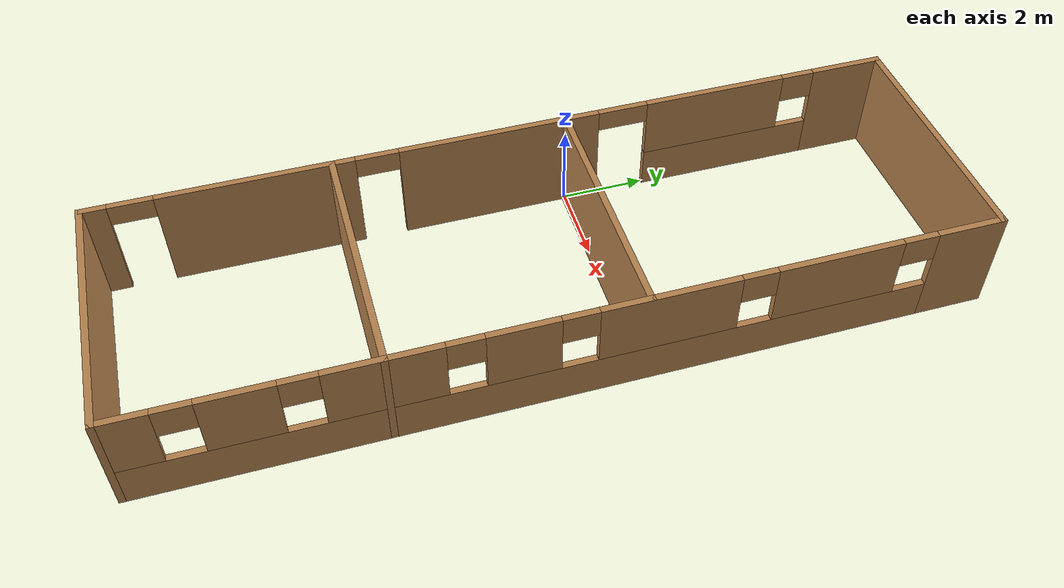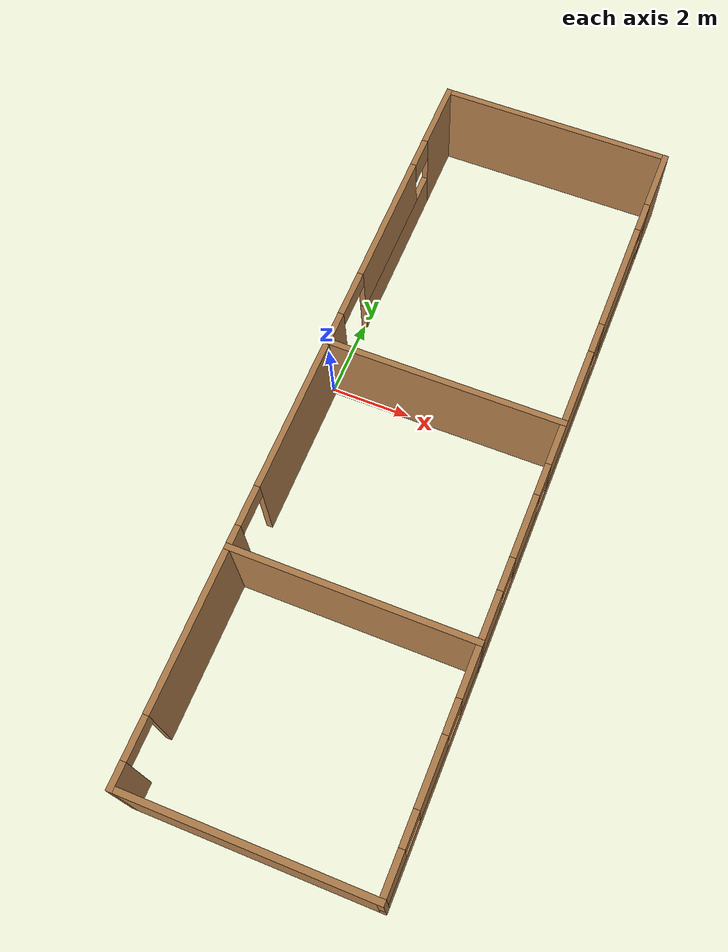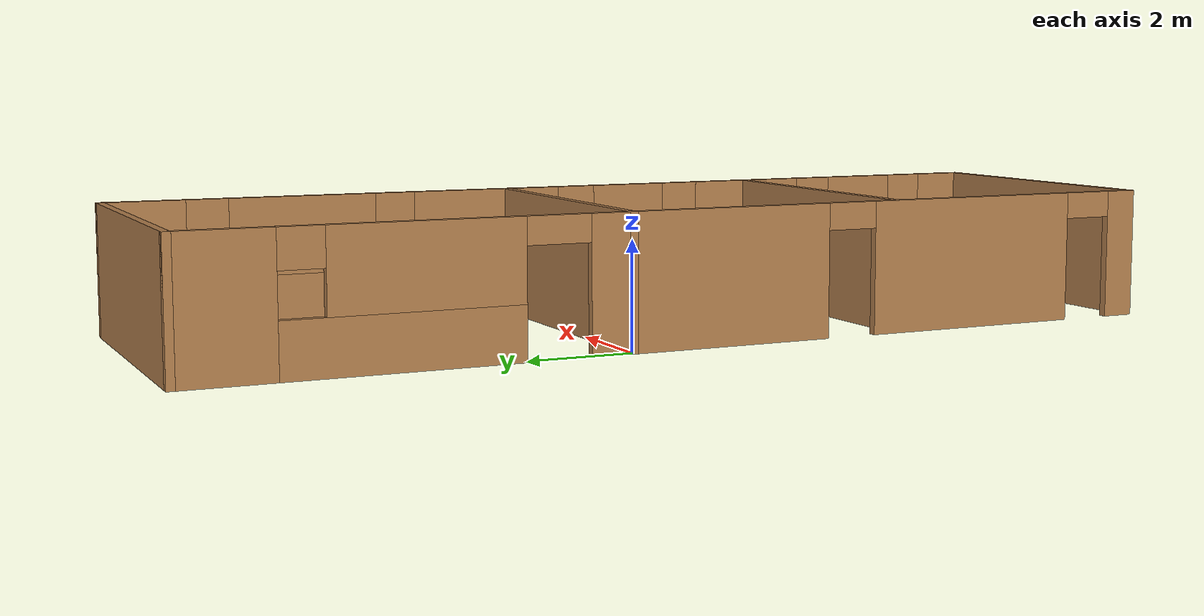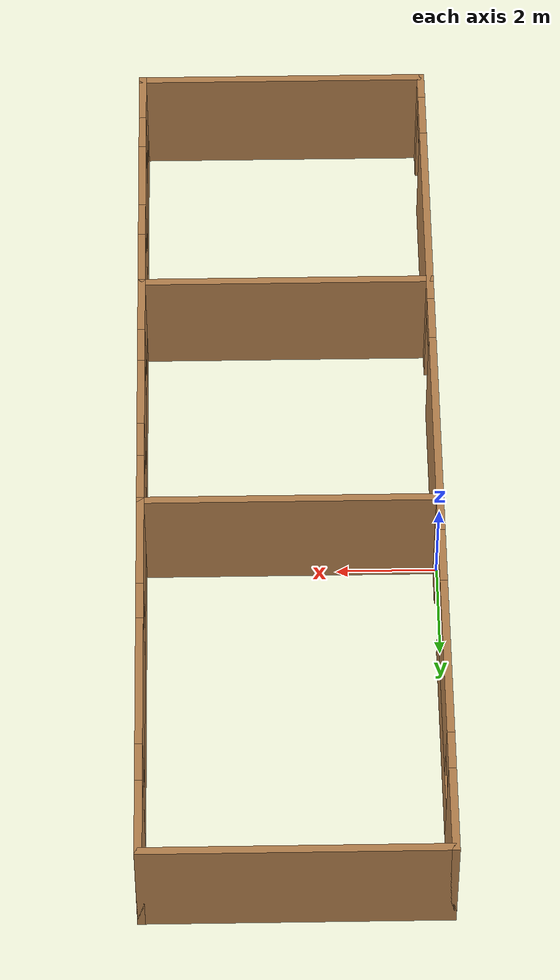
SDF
<?xml version='1.0'?>
<sdf version='1.6'>
  <model name='hospital_room2_empty'>
    <pose frame=''>2.925 -1.5 0 0 -0 0</pose>
    <link name='Wall_0'>
      <pose frame=''>-2.925 0 0 0 -0 -1.5708</pose>
      <visual name='Wall_0_Visual_0'>
        <pose frame=''>-8.67873 0 1.25 0 -0 0</pose>
        <geometry>
          <box>
            <size>1.79254 0.15 2.5</size>
          </box>
        </geometry>
        <material>
          <script>
            <uri>file://media/materials/scripts/gazebo.material</uri>
            <name>Gazebo/Wood</name>
          </script>
          <ambient>1 1 1 1</ambient>
        </material>
        <meta>
          <layer>0</layer>
        </meta>
      </visual>
      <collision name='Wall_0_Collision_0'>
        <geometry>
          <box>
            <size>1.79254 0.15 2.5</size>
          </box>
        </geometry>
        <pose frame=''>-8.67873 0 1.25 0 -0 0</pose>
      </collision>
      <visual name='Wall_0_Visual_1'>
        <pose frame=''>0.083783 0 1.25 0 -0 0</pose>
        <geometry>
          <box>
            <size>4.77575 0.15 2.5</size>
          </box>
        </geometry>
        <material>
          <script>
            <uri>file://media/materials/scripts/gazebo.material</uri>
            <name>Gazebo/Wood</name>
          </script>
          <ambient>1 1 1 1</ambient>
        </material>
        <meta>
          <layer>0</layer>
        </meta>
      </visual>
      <collision name='Wall_0_Collision_1'>
        <geometry>
          <box>
            <size>4.77575 0.15 2.5</size>
          </box>
        </geometry>
        <pose frame=''>0.083783 0 1.25 0 -0 0</pose>
      </collision>
      <visual name='Wall_0_Visual_2'>
        <pose frame=''>5.70011 0 1.25 0 -0 0</pose>
        <geometry>
          <box>
            <size>4.4569 0.15 2.5</size>
          </box>
        </geometry>
        <material>
          <script>
            <uri>file://media/materials/scripts/gazebo.material</uri>
            <name>Gazebo/Wood</name>
          </script>
          <ambient>1 1 1 1</ambient>
        </material>
        <meta>
          <layer>0</layer>
        </meta>
      </visual>
      <collision name='Wall_0_Collision_2'>
        <geometry>
          <box>
            <size>4.4569 0.15 2.5</size>
          </box>
        </geometry>
        <pose frame=''>5.70011 0 1.25 0 -0 0</pose>
      </collision>
      <visual name='Wall_0_Visual_3'>
        <pose frame=''>9.25178 0 1.25 0 -0 0</pose>
        <geometry>
          <box>
            <size>0.646445 0.15 2.5</size>
          </box>
        </geometry>
        <material>
          <script>
            <uri>file://media/materials/scripts/gazebo.material</uri>
            <name>Gazebo/Wood</name>
          </script>
          <ambient>1 1 1 1</ambient>
        </material>
        <meta>
          <layer>0</layer>
        </meta>
      </visual>
      <collision name='Wall_0_Collision_3'>
        <geometry>
          <box>
            <size>0.646445 0.15 2.5</size>
          </box>
        </geometry>
        <pose frame=''>9.25178 0 1.25 0 -0 0</pose>
      </collision>
      <visual name='Wall_0_Visual_4'>
        <pose frame=''>-5.64328 0 0.5 0 -0 0</pose>
        <geometry>
          <box>
            <size>4.27837 0.15 1</size>
          </box>
        </geometry>
        <material>
          <script>
            <uri>file://media/materials/scripts/gazebo.material</uri>
            <name>Gazebo/Wood</name>
          </script>
          <ambient>1 1 1 1</ambient>
        </material>
        <meta>
          <layer>0</layer>
        </meta>
      </visual>
      <collision name='Wall_0_Collision_4'>
        <geometry>
          <box>
            <size>4.27837 0.15 1</size>
          </box>
        </geometry>
        <pose frame=''>-5.64328 0 0.5 0 -0 0</pose>
      </collision>
      <visual name='Wall_0_Visual_5'>
        <pose frame=''>-5.24328 0 1.75 0 -0 0</pose>
        <geometry>
          <box>
            <size>3.47837 0.15 1.5</size>
          </box>
        </geometry>
        <material>
          <script>
            <uri>file://media/materials/scripts/gazebo.material</uri>
            <name>Gazebo/Wood</name>
          </script>
          <ambient>1 1 1 1</ambient>
        </material>
        <meta>
          <layer>0</layer>
        </meta>
      </visual>
      <collision name='Wall_0_Collision_5'>
        <geometry>
          <box>
            <size>3.47837 0.15 1.5</size>
          </box>
        </geometry>
        <pose frame=''>-5.24328 0 1.75 0 -0 0</pose>
      </collision>
      <visual name='Wall_0_Visual_6'>
        <pose frame=''>-7.38246 0 2.15 0 -0 0</pose>
        <geometry>
          <box>
            <size>0.8 0.15 0.7</size>
          </box>
        </geometry>
        <material>
          <script>
            <uri>file://media/materials/scripts/gazebo.material</uri>
            <name>Gazebo/Wood</name>
          </script>
          <ambient>1 1 1 1</ambient>
        </material>
        <meta>
          <layer>0</layer>
        </meta>
      </visual>
      <collision name='Wall_0_Collision_6'>
        <geometry>
          <box>
            <size>0.8 0.15 0.7</size>
          </box>
        </geometry>
        <pose frame=''>-7.38246 0 2.15 0 -0 0</pose>
      </collision>
      <visual name='Wall_0_Visual_7'>
        <pose frame=''>2.97166 0 2.25 0 -0 0</pose>
        <geometry>
          <box>
            <size>1 0.15 0.5</size>
          </box>
        </geometry>
        <material>
          <script>
            <uri>file://media/materials/scripts/gazebo.material</uri>
            <name>Gazebo/Wood</name>
          </script>
          <ambient>1 1 1 1</ambient>
        </material>
        <meta>
          <layer>0</layer>
        </meta>
      </visual>
      <collision name='Wall_0_Collision_7'>
        <geometry>
          <box>
            <size>1 0.15 0.5</size>
          </box>
        </geometry>
        <pose frame=''>2.97166 0 2.25 0 -0 0</pose>
      </collision>
      <visual name='Wall_0_Visual_8'>
        <pose frame=''>8.42855 0 2.25 0 -0 0</pose>
        <geometry>
          <box>
            <size>1 0.15 0.5</size>
          </box>
        </geometry>
        <material>
          <script>
            <uri>file://media/materials/scripts/gazebo.material</uri>
            <name>Gazebo/Wood</name>
          </script>
          <ambient>1 1 1 1</ambient>
        </material>
        <meta>
          <layer>0</layer>
        </meta>
      </visual>
      <collision name='Wall_0_Collision_8'>
        <geometry>
          <box>
            <size>1 0.15 0.5</size>
          </box>
        </geometry>
        <pose frame=''>8.42855 0 2.25 0 -0 0</pose>
      </collision>
      <visual name='Wall_0_Visual_9'>
        <pose frame=''>-2.90409 0 2.25 0 -0 0</pose>
        <geometry>
          <box>
            <size>1.2 0.15 0.5</size>
          </box>
        </geometry>
        <material>
          <script>
            <uri>file://media/materials/scripts/gazebo.material</uri>
            <name>Gazebo/Wood</name>
          </script>
          <ambient>1 1 1 1</ambient>
        </material>
        <meta>
          <layer>0</layer>
        </meta>
      </visual>
      <collision name='Wall_0_Collision_9'>
        <geometry>
          <box>
            <size>1.2 0.15 0.5</size>
          </box>
        </geometry>
        <pose frame=''>-2.90409 0 2.25 0 -0 0</pose>
      </collision>
    </link>
    <link name='Wall_2'>
      <collision name='Wall_2_Collision'>
        <geometry>
          <box>
            <size>6 0.15 2.5</size>
          </box>
        </geometry>
        <pose frame=''>0 0 1.25 0 -0 0</pose>
      </collision>
      <visual name='Wall_2_Visual'>
        <pose frame=''>0 0 1.25 0 -0 0</pose>
        <geometry>
          <box>
            <size>6 0.15 2.5</size>
          </box>
        </geometry>
        <material>
          <script>
            <uri>file://media/materials/scripts/gazebo.material</uri>
            <name>Gazebo/Wood</name>
          </script>
          <ambient>1 1 1 1</ambient>
        </material>
        <meta>
          <layer>0</layer>
        </meta>
      </visual>
      <pose frame=''>-0 9.5 0 0 -0 0</pose>
    </link>
    <link name='Wall_3'>
      <pose frame=''>2.925 0 0 0 -0 -1.5708</pose>
      <visual name='Wall_3_Visual_0'>
        <pose frame=''>-8.76618 0 1.25 0 -0 0</pose>
        <geometry>
          <box>
            <size>1.61764 0.15 2.5</size>
          </box>
        </geometry>
        <material>
          <script>
            <uri>file://media/materials/scripts/gazebo.material</uri>
            <name>Gazebo/Wood</name>
          </script>
          <ambient>1 1 1 1</ambient>
        </material>
        <meta>
          <layer>0</layer>
        </meta>
      </visual>
      <collision name='Wall_3_Collision_0'>
        <geometry>
          <box>
            <size>1.61764 0.15 2.5</size>
          </box>
        </geometry>
        <pose frame=''>-8.76618 0 1.25 0 -0 0</pose>
      </collision>
      <visual name='Wall_3_Visual_1'>
        <pose frame=''>0.808819 0 0.5 0 -0 0</pose>
        <geometry>
          <box>
            <size>17.5324 0.15 1</size>
          </box>
        </geometry>
        <material>
          <script>
            <uri>file://media/materials/scripts/gazebo.material</uri>
            <name>Gazebo/Wood</name>
          </script>
          <ambient>1 1 1 1</ambient>
        </material>
        <meta>
          <layer>0</layer>
        </meta>
      </visual>
      <collision name='Wall_3_Collision_1'>
        <geometry>
          <box>
            <size>17.5324 0.15 1</size>
          </box>
        </geometry>
        <pose frame=''>0.808819 0 0.5 0 -0 0</pose>
      </collision>
      <visual name='Wall_3_Visual_2'>
        <pose frame=''>-5.72091 0 1.75 0 -0 0</pose>
        <geometry>
          <box>
            <size>2.87291 0.15 1.5</size>
          </box>
        </geometry>
        <material>
          <script>
            <uri>file://media/materials/scripts/gazebo.material</uri>
            <name>Gazebo/Wood</name>
          </script>
          <ambient>1 1 1 1</ambient>
        </material>
        <meta>
          <layer>0</layer>
        </meta>
      </visual>
      <collision name='Wall_3_Collision_2'>
        <geometry>
          <box>
            <size>2.87291 0.15 1.5</size>
          </box>
        </geometry>
        <pose frame=''>-5.72091 0 1.75 0 -0 0</pose>
      </collision>
      <visual name='Wall_3_Visual_3'>
        <pose frame=''>-1.94305 0 1.75 0 -0 0</pose>
        <geometry>
          <box>
            <size>3.08279 0.15 1.5</size>
          </box>
        </geometry>
        <material>
          <script>
            <uri>file://media/materials/scripts/gazebo.material</uri>
            <name>Gazebo/Wood</name>
          </script>
          <ambient>1 1 1 1</ambient>
        </material>
        <meta>
          <layer>0</layer>
        </meta>
      </visual>
      <collision name='Wall_3_Collision_3'>
        <geometry>
          <box>
            <size>3.08279 0.15 1.5</size>
          </box>
        </geometry>
        <pose frame=''>-1.94305 0 1.75 0 -0 0</pose>
      </collision>
      <visual name='Wall_3_Visual_4'>
        <pose frame=''>1.18767 0 1.75 0 -0 0</pose>
        <geometry>
          <box>
            <size>1.57865 0.15 1.5</size>
          </box>
        </geometry>
        <material>
          <script>
            <uri>file://media/materials/scripts/gazebo.material</uri>
            <name>Gazebo/Wood</name>
          </script>
          <ambient>1 1 1 1</ambient>
        </material>
        <meta>
          <layer>0</layer>
        </meta>
      </visual>
      <collision name='Wall_3_Collision_4'>
        <geometry>
          <box>
            <size>1.57865 0.15 1.5</size>
          </box>
        </geometry>
        <pose frame=''>1.18767 0 1.75 0 -0 0</pose>
      </collision>
      <visual name='Wall_3_Visual_5'>
        <pose frame=''>4.02106 0 1.75 0 -0 0</pose>
        <geometry>
          <box>
            <size>2.48813 0.15 1.5</size>
          </box>
        </geometry>
        <material>
          <script>
            <uri>file://media/materials/scripts/gazebo.material</uri>
            <name>Gazebo/Wood</name>
          </script>
          <ambient>1 1 1 1</ambient>
        </material>
        <meta>
          <layer>0</layer>
        </meta>
      </visual>
      <collision name='Wall_3_Collision_5'>
        <geometry>
          <box>
            <size>2.48813 0.15 1.5</size>
          </box>
        </geometry>
        <pose frame=''>4.02106 0 1.75 0 -0 0</pose>
      </collision>
      <visual name='Wall_3_Visual_6'>
        <pose frame=''>6.85445 0 1.75 0 -0 0</pose>
        <geometry>
          <box>
            <size>1.57865 0.15 1.5</size>
          </box>
        </geometry>
        <material>
          <script>
            <uri>file://media/materials/scripts/gazebo.material</uri>
            <name>Gazebo/Wood</name>
          </script>
          <ambient>1 1 1 1</ambient>
        </material>
        <meta>
          <layer>0</layer>
        </meta>
      </visual>
      <collision name='Wall_3_Collision_6'>
        <geometry>
          <box>
            <size>1.57865 0.15 1.5</size>
          </box>
        </geometry>
        <pose frame=''>6.85445 0 1.75 0 -0 0</pose>
      </collision>
      <visual name='Wall_3_Visual_7'>
        <pose frame=''>9.00939 0 1.75 0 -0 0</pose>
        <geometry>
          <box>
            <size>1.13123 0.15 1.5</size>
          </box>
        </geometry>
        <material>
          <script>
            <uri>file://media/materials/scripts/gazebo.material</uri>
            <name>Gazebo/Wood</name>
          </script>
          <ambient>1 1 1 1</ambient>
        </material>
        <meta>
          <layer>0</layer>
        </meta>
      </visual>
      <collision name='Wall_3_Collision_7'>
        <geometry>
          <box>
            <size>1.13123 0.15 1.5</size>
          </box>
        </geometry>
        <pose frame=''>9.00939 0 1.75 0 -0 0</pose>
      </collision>
      <visual name='Wall_3_Visual_8'>
        <pose frame=''>-7.55736 0 2.15 0 -0 0</pose>
        <geometry>
          <box>
            <size>0.8 0.15 0.7</size>
          </box>
        </geometry>
        <material>
          <script>
            <uri>file://media/materials/scripts/gazebo.material</uri>
            <name>Gazebo/Wood</name>
          </script>
          <ambient>1 1 1 1</ambient>
        </material>
        <meta>
          <layer>0</layer>
        </meta>
      </visual>
      <collision name='Wall_3_Collision_8'>
        <geometry>
          <box>
            <size>0.8 0.15 0.7</size>
          </box>
        </geometry>
        <pose frame=''>-7.55736 0 2.15 0 -0 0</pose>
      </collision>
      <visual name='Wall_3_Visual_9'>
        <pose frame=''>-3.88445 0 2.15 0 -0 0</pose>
        <geometry>
          <box>
            <size>0.8 0.15 0.7</size>
          </box>
        </geometry>
        <material>
          <script>
            <uri>file://media/materials/scripts/gazebo.material</uri>
            <name>Gazebo/Wood</name>
          </script>
          <ambient>1 1 1 1</ambient>
        </material>
        <meta>
          <layer>0</layer>
        </meta>
      </visual>
      <collision name='Wall_3_Collision_9'>
        <geometry>
          <box>
            <size>0.8 0.15 0.7</size>
          </box>
        </geometry>
        <pose frame=''>-3.88445 0 2.15 0 -0 0</pose>
      </collision>
      <visual name='Wall_3_Visual_10'>
        <pose frame=''>-0.001655 0 2.15 0 -0 0</pose>
        <geometry>
          <box>
            <size>0.8 0.15 0.7</size>
          </box>
        </geometry>
        <material>
          <script>
            <uri>file://media/materials/scripts/gazebo.material</uri>
            <name>Gazebo/Wood</name>
          </script>
          <ambient>1 1 1 1</ambient>
        </material>
        <meta>
          <layer>0</layer>
        </meta>
      </visual>
      <collision name='Wall_3_Collision_10'>
        <geometry>
          <box>
            <size>0.8 0.15 0.7</size>
          </box>
        </geometry>
        <pose frame=''>-0.001655 0 2.15 0 -0 0</pose>
      </collision>
      <visual name='Wall_3_Visual_11'>
        <pose frame=''>2.37699 0 2.15 0 -0 0</pose>
        <geometry>
          <box>
            <size>0.8 0.15 0.7</size>
          </box>
        </geometry>
        <material>
          <script>
            <uri>file://media/materials/scripts/gazebo.material</uri>
            <name>Gazebo/Wood</name>
          </script>
          <ambient>1 1 1 1</ambient>
        </material>
        <meta>
          <layer>0</layer>
        </meta>
      </visual>
      <collision name='Wall_3_Collision_11'>
        <geometry>
          <box>
            <size>0.8 0.15 0.7</size>
          </box>
        </geometry>
        <pose frame=''>2.37699 0 2.15 0 -0 0</pose>
      </collision>
      <visual name='Wall_3_Visual_12'>
        <pose frame=''>5.66512 0 2.15 0 -0 0</pose>
        <geometry>
          <box>
            <size>0.8 0.15 0.7</size>
          </box>
        </geometry>
        <material>
          <script>
            <uri>file://media/materials/scripts/gazebo.material</uri>
            <name>Gazebo/Wood</name>
          </script>
          <ambient>1 1 1 1</ambient>
        </material>
        <meta>
          <layer>0</layer>
        </meta>
      </visual>
      <collision name='Wall_3_Collision_12'>
        <geometry>
          <box>
            <size>0.8 0.15 0.7</size>
          </box>
        </geometry>
        <pose frame=''>5.66512 0 2.15 0 -0 0</pose>
      </collision>
      <visual name='Wall_3_Visual_13'>
        <pose frame=''>8.04377 0 2.15 0 -0 0</pose>
        <geometry>
          <box>
            <size>0.8 0.15 0.7</size>
          </box>
        </geometry>
        <material>
          <script>
            <uri>file://media/materials/scripts/gazebo.material</uri>
            <name>Gazebo/Wood</name>
          </script>
          <ambient>1 1 1 1</ambient>
        </material>
        <meta>
          <layer>0</layer>
        </meta>
      </visual>
      <collision name='Wall_3_Collision_13'>
        <geometry>
          <box>
            <size>0.8 0.15 0.7</size>
          </box>
        </geometry>
        <pose frame=''>8.04377 0 2.15 0 -0 0</pose>
      </collision>
    </link>
    <link name='Wall_5'>
      <collision name='Wall_5_Collision'>
        <geometry>
          <box>
            <size>6 0.15 2.5</size>
          </box>
        </geometry>
        <pose frame=''>0 0 1.25 0 -0 0</pose>
      </collision>
      <visual name='Wall_5_Visual'>
        <pose frame=''>0 0 1.25 0 -0 0</pose>
        <geometry>
          <box>
            <size>6 0.15 2.5</size>
          </box>
        </geometry>
        <material>
          <script>
            <uri>file://media/materials/scripts/gazebo.material</uri>
            <name>Gazebo/Wood</name>
          </script>
          <ambient>1 1 1 1</ambient>
        </material>
        <meta>
          <layer>0</layer>
        </meta>
      </visual>
      <pose frame=''>-0 -9.5 0 0 -0 0</pose>
    </link>
    <link name='Wall_7'>
      <collision name='Wall_7_Collision'>
        <geometry>
          <box>
            <size>6 0.15 2.5</size>
          </box>
        </geometry>
        <pose frame=''>0 0 1.25 0 -0 0</pose>
      </collision>
      <visual name='Wall_7_Visual'>
        <pose frame=''>0 0 1.25 0 -0 0</pose>
        <geometry>
          <box>
            <size>6 0.15 2.5</size>
          </box>
        </geometry>
        <material>
          <script>
            <uri>file://media/materials/scripts/gazebo.material</uri>
            <name>Gazebo/Wood</name>
          </script>
          <ambient>1 1 1 1</ambient>
        </material>
        <meta>
          <layer>0</layer>
        </meta>
      </visual>
      <pose frame=''>-0 1.5 0 0 -0 0</pose>
    </link>
    <link name='Wall_9'>
      <collision name='Wall_9_Collision'>
        <geometry>
          <box>
            <size>6 0.15 2.5</size>
          </box>
        </geometry>
        <pose frame=''>0 0 1.25 0 -0 0</pose>
      </collision>
      <visual name='Wall_9_Visual'>
        <pose frame=''>0 0 1.25 0 -0 0</pose>
        <geometry>
          <box>
            <size>6 0.15 2.5</size>
          </box>
        </geometry>
        <material>
          <script>
            <uri>file://media/materials/scripts/gazebo.material</uri>
            <name>Gazebo/Wood</name>
          </script>
          <ambient>1 1 1 1</ambient>
        </material>
        <meta>
          <layer>0</layer>
        </meta>
      </visual>
      <pose frame=''>-0 -4 0 0 -0 0</pose>
    </link>
    <static>1</static>
  </model>
</sdf>
